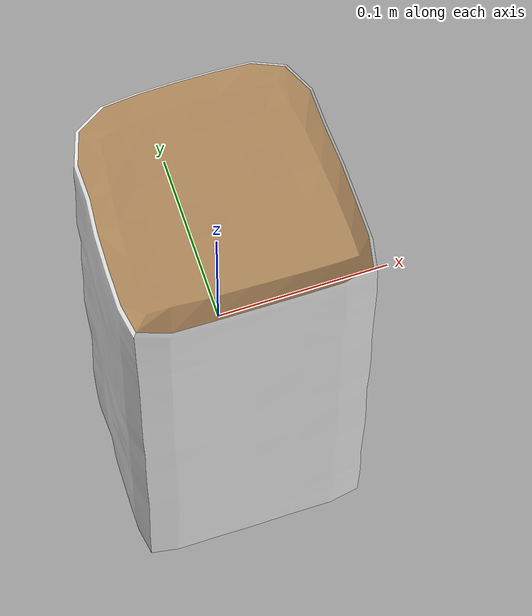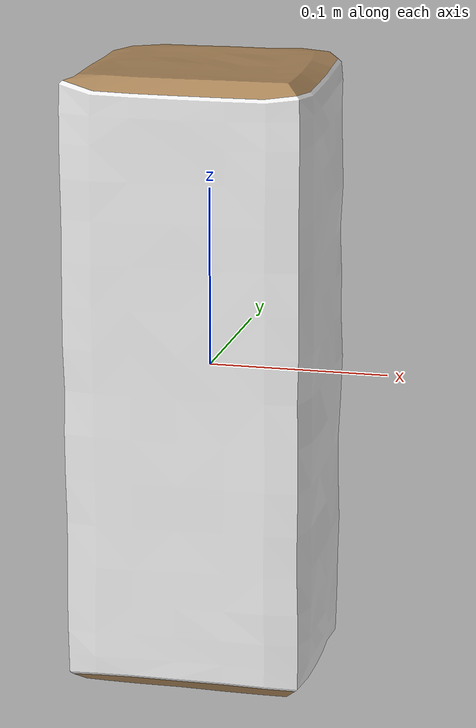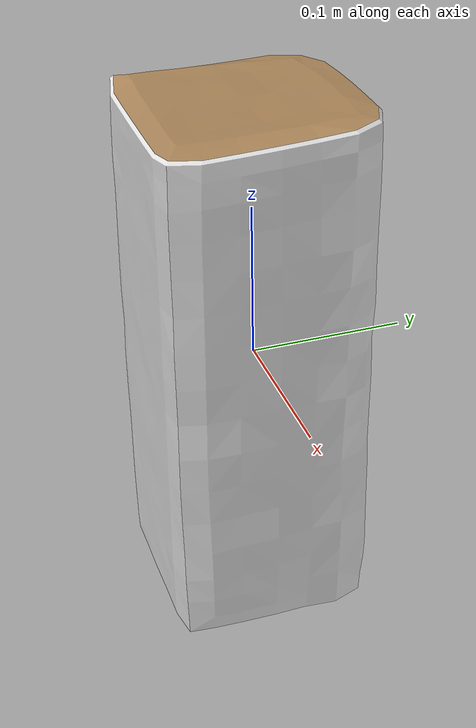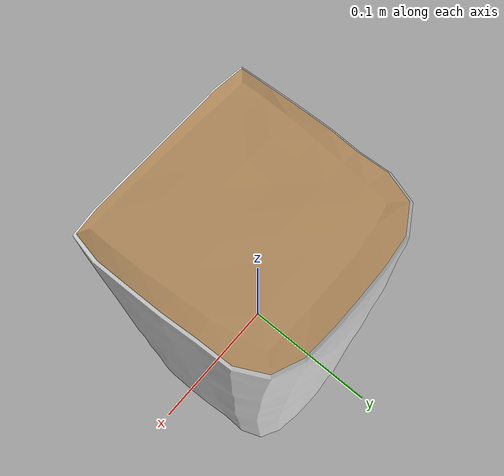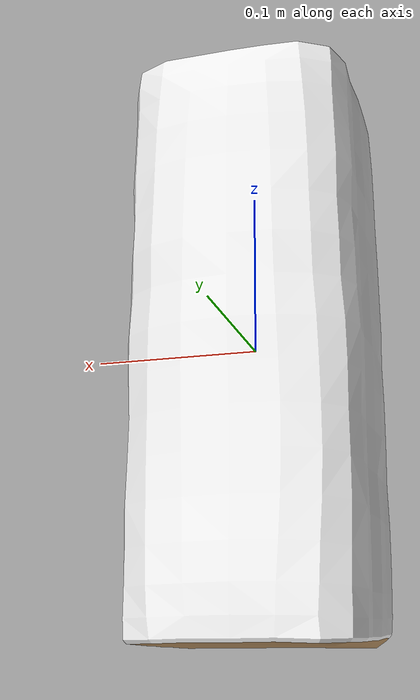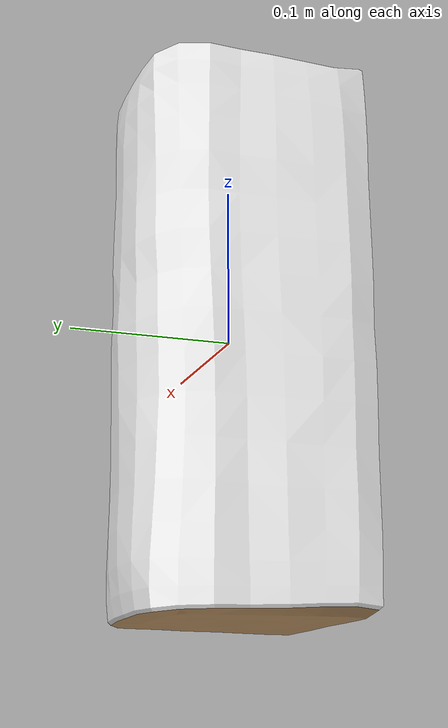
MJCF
<mujoco model="Bread_28">
  <compiler autolimits="true" boundmass="0.01" angle="radian"/>
  <default>
    <default class="/">
      <default class="__VISUAL_MJT__">
        <geom contype="0" conaffinity="0" group="0"/>
      </default>
      <default class="__STRUCTURAL_MJT__">
        <geom contype="8" conaffinity="15" group="4" friction="0.90000000000000002 0.90000000000000002 0.001" solref="0.025000000000000001 1" solimp="0.998 0.998 0.001"/>
      </default>
      <default class="__DYNAMIC_MJT__">
        <geom contype="1" conaffinity="15" group="4" friction="0.90000000000000002 0.90000000000000002 0.001" solref="0.025000000000000001 1" solimp="0.998 0.998 0.001"/>
      </default>
    </default>
  </default>
  <asset>
    <texture name="BreadSlice_Mat2" type="2d" file="BreadSlice_AlbedoTransparency.png"/>
    <material name="material_BreadSlice_Mat2" class="/" texture="BreadSlice_Mat2" specular="0.5" shininess="0.5" rgba="0.87735850000000004 0.71302310000000002 0.50075650000000005 1"/>
    <texture name="WhiteBread_Mat1" type="2d" file="WhiteBread_AlbedoTransparency.png"/>
    <material name="material_WhiteBread_Mat1" class="/" texture="WhiteBread_Mat1" specular="0.5" shininess="0.5" rgba="1 1 1 1"/>
    <mesh name="Bread_28_whitebread_a_mesh_0" class="/" file="Bread_28_whitebread_a_mesh/Bread_28_whitebread_a_mesh_0.obj" scale="1 1 1"/>
    <mesh name="Bread_28_whitebread_a_mesh_1" class="/" file="Bread_28_whitebread_a_mesh/Bread_28_whitebread_a_mesh_1.obj" scale="1 1 1"/>
  </asset>
  <worldbody>
    <body name="Bread_28">
      <joint name="Bread_28_free" class="/" type="free" pos="0 0 0" axis="0 0 1" stiffness="0" range="0 0" armature="0" damping="0.10000000000000001" frictionloss="0"/>
      <body name="Bread_28_whitebread_a_mesh" pos="-0 0.00020000000000000001 0" quat="1 0 0 0">
        <geom name="Bread_28_whitebread_a_mesh_0" class="__VISUAL_MJT__" type="mesh" material="material_BreadSlice_Mat2" shellinertia="false" mesh="Bread_28_whitebread_a_mesh_0"/>
        <geom name="Bread_28_whitebread_a_mesh_1" class="__VISUAL_MJT__" type="mesh" material="material_WhiteBread_Mat1" shellinertia="false" mesh="Bread_28_whitebread_a_mesh_1"/>
        <geom name="Bread_28_PrimitiveCollider_0" class="__DYNAMIC_MJT__" type="box" size="0.069951221346855164 0.072182655334472656 0.17227089405059814" rgba="0 1 0 1" pos="-0 -0.00020313262939453125 0" quat="1 0 0 0"/>
      </body>
    </body>
  </worldbody>
</mujoco>
